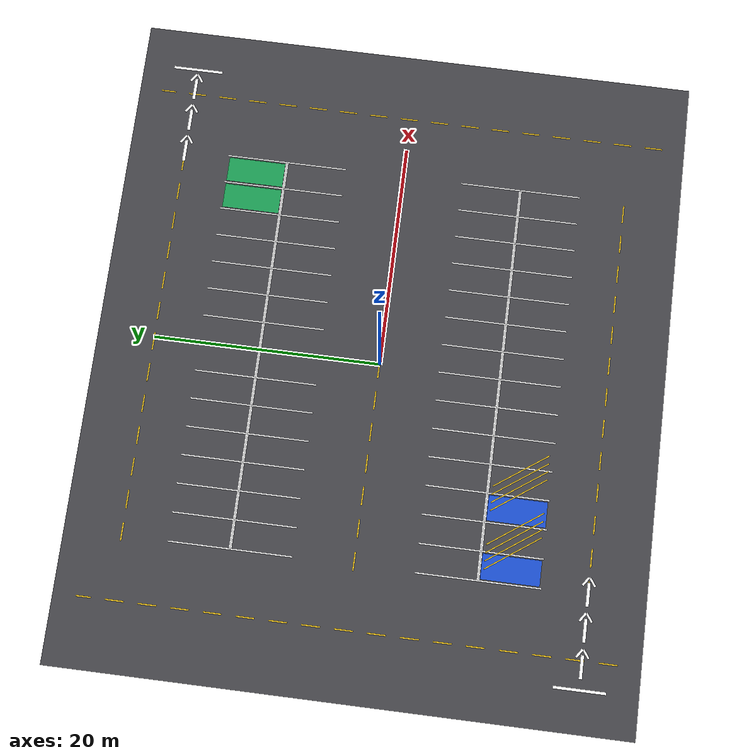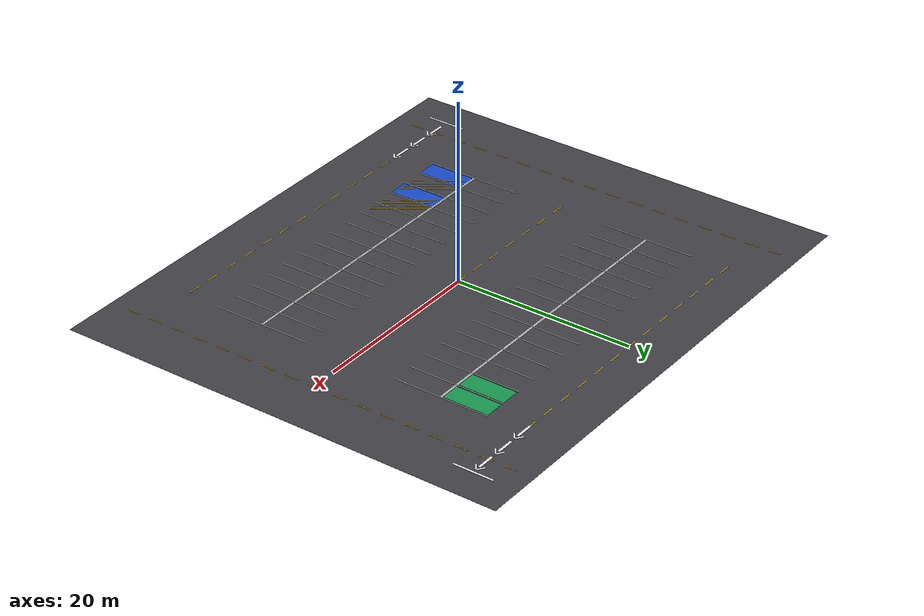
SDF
<sdf version="1.10">
 <world name="parking_lot">
  <model name="ground">
   <static>true</static>
   <link name="link">
    <collision name="c">
     <geometry><plane><normal>0 0 1</normal><size>78.0 70.1</size></plane></geometry>
     <surface><friction><ode><mu>1.0</mu><mu2>1.0</mu2></ode></friction></surface>
    </collision>
    <visual name="floor_vis">
     <pose>0.0000 0.0000 -0.0100 0 0 0.000000</pose>
     <geometry><box><size>58.0000 50.1000 0.0200</size></box></geometry>
     <material>
      <ambient>0.22 0.22 0.24 1</ambient>
      <diffuse>0.26 0.26 0.28 1</diffuse>
      <specular>0.1 0.1 0.1 1</specular>
     </material>
    </visual>
   </link>
  </model>
  <model name="road_markings">
   <static>true</static>
   <link name="link">
    <visual name="l_A_v00_vis">
     <pose>-17.5000 -13.3500 0.0240 0 0 0.000000</pose>
     <geometry><box><size>0.1200 5.4000 0.0060</size></box></geometry>
     <material>
      <ambient>0.85 0.85 0.85 1</ambient>
      <diffuse>0.95 0.95 0.95 1</diffuse>
      <specular>0.1 0.1 0.1 1</specular>
     </material>
    </visual>
    <visual name="l_A_v01_vis">
     <pose>-15.0000 -13.3500 0.0240 0 0 0.000000</pose>
     <geometry><box><size>0.1200 5.4000 0.0060</size></box></geometry>
     <material>
      <ambient>0.85 0.85 0.85 1</ambient>
      <diffuse>0.95 0.95 0.95 1</diffuse>
      <specular>0.1 0.1 0.1 1</specular>
     </material>
    </visual>
    <visual name="l_A_v02_vis">
     <pose>-12.5000 -13.3500 0.0240 0 0 0.000000</pose>
     <geometry><box><size>0.1200 5.4000 0.0060</size></box></geometry>
     <material>
      <ambient>0.85 0.85 0.85 1</ambient>
      <diffuse>0.95 0.95 0.95 1</diffuse>
      <specular>0.1 0.1 0.1 1</specular>
     </material>
    </visual>
    <visual name="l_A_v03_vis">
     <pose>-10.0000 -13.3500 0.0240 0 0 0.000000</pose>
     <geometry><box><size>0.1200 5.4000 0.0060</size></box></geometry>
     <material>
      <ambient>0.85 0.85 0.85 1</ambient>
      <diffuse>0.95 0.95 0.95 1</diffuse>
      <specular>0.1 0.1 0.1 1</specular>
     </material>
    </visual>
    <visual name="l_A_v04_vis">
     <pose>-7.5000 -13.3500 0.0240 0 0 0.000000</pose>
     <geometry><box><size>0.1200 5.4000 0.0060</size></box></geometry>
     <material>
      <ambient>0.85 0.85 0.85 1</ambient>
      <diffuse>0.95 0.95 0.95 1</diffuse>
      <specular>0.1 0.1 0.1 1</specular>
     </material>
    </visual>
    <visual name="l_A_v05_vis">
     <pose>-5.0000 -13.3500 0.0240 0 0 0.000000</pose>
     <geometry><box><size>0.1200 5.4000 0.0060</size></box></geometry>
     <material>
      <ambient>0.85 0.85 0.85 1</ambient>
      <diffuse>0.95 0.95 0.95 1</diffuse>
      <specular>0.1 0.1 0.1 1</specular>
     </material>
    </visual>
    <visual name="l_A_v06_vis">
     <pose>-2.5000 -13.3500 0.0240 0 0 0.000000</pose>
     <geometry><box><size>0.1200 5.4000 0.0060</size></box></geometry>
     <material>
      <ambient>0.85 0.85 0.85 1</ambient>
      <diffuse>0.95 0.95 0.95 1</diffuse>
      <specular>0.1 0.1 0.1 1</specular>
     </material>
    </visual>
    <visual name="l_A_v07_vis">
     <pose>0.0000 -13.3500 0.0240 0 0 0.000000</pose>
     <geometry><box><size>0.1200 5.4000 0.0060</size></box></geometry>
     <material>
      <ambient>0.85 0.85 0.85 1</ambient>
      <diffuse>0.95 0.95 0.95 1</diffuse>
      <specular>0.1 0.1 0.1 1</specular>
     </material>
    </visual>
    <visual name="l_A_v08_vis">
     <pose>2.5000 -13.3500 0.0240 0 0 0.000000</pose>
     <geometry><box><size>0.1200 5.4000 0.0060</size></box></geometry>
     <material>
      <ambient>0.85 0.85 0.85 1</ambient>
      <diffuse>0.95 0.95 0.95 1</diffuse>
      <specular>0.1 0.1 0.1 1</specular>
     </material>
    </visual>
    <visual name="l_A_v09_vis">
     <pose>5.0000 -13.3500 0.0240 0 0 0.000000</pose>
     <geometry><box><size>0.1200 5.4000 0.0060</size></box></geometry>
     <material>
      <ambient>0.85 0.85 0.85 1</ambient>
      <diffuse>0.95 0.95 0.95 1</diffuse>
      <specular>0.1 0.1 0.1 1</specular>
     </material>
    </visual>
    <visual name="l_A_v10_vis">
     <pose>7.5000 -13.3500 0.0240 0 0 0.000000</pose>
     <geometry><box><size>0.1200 5.4000 0.0060</size></box></geometry>
     <material>
      <ambient>0.85 0.85 0.85 1</ambient>
      <diffuse>0.95 0.95 0.95 1</diffuse>
      <specular>0.1 0.1 0.1 1</specular>
     </material>
    </visual>
    <visual name="l_A_v11_vis">
     <pose>10.0000 -13.3500 0.0240 0 0 0.000000</pose>
     <geometry><box><size>0.1200 5.4000 0.0060</size></box></geometry>
     <material>
      <ambient>0.85 0.85 0.85 1</ambient>
      <diffuse>0.95 0.95 0.95 1</diffuse>
      <specular>0.1 0.1 0.1 1</specular>
     </material>
    </visual>
    <visual name="l_A_v12_vis">
     <pose>12.5000 -13.3500 0.0240 0 0 0.000000</pose>
     <geometry><box><size>0.1200 5.4000 0.0060</size></box></geometry>
     <material>
      <ambient>0.85 0.85 0.85 1</ambient>
      <diffuse>0.95 0.95 0.95 1</diffuse>
      <specular>0.1 0.1 0.1 1</specular>
     </material>
    </visual>
    <visual name="l_A_v13_vis">
     <pose>15.0000 -13.3500 0.0240 0 0 0.000000</pose>
     <geometry><box><size>0.1200 5.4000 0.0060</size></box></geometry>
     <material>
      <ambient>0.85 0.85 0.85 1</ambient>
      <diffuse>0.95 0.95 0.95 1</diffuse>
      <specular>0.1 0.1 0.1 1</specular>
     </material>
    </visual>
    <visual name="l_A_v14_vis">
     <pose>17.5000 -13.3500 0.0240 0 0 0.000000</pose>
     <geometry><box><size>0.1200 5.4000 0.0060</size></box></geometry>
     <material>
      <ambient>0.85 0.85 0.85 1</ambient>
      <diffuse>0.95 0.95 0.95 1</diffuse>
      <specular>0.1 0.1 0.1 1</specular>
     </material>
    </visual>
    <visual name="l_A_back_vis">
     <pose>0.0000 -10.7100 0.0170 0 0 0.000000</pose>
     <geometry><box><size>35.0000 0.1200 0.0060</size></box></geometry>
     <material>
      <ambient>0.85 0.85 0.85 1</ambient>
      <diffuse>0.95 0.95 0.95 1</diffuse>
      <specular>0.1 0.1 0.1 1</specular>
     </material>
    </visual>
    <visual name="l_B_v00_vis">
     <pose>-17.5000 -7.9500 0.0240 0 0 0.000000</pose>
     <geometry><box><size>0.1200 5.4000 0.0060</size></box></geometry>
     <material>
      <ambient>0.85 0.85 0.85 1</ambient>
      <diffuse>0.95 0.95 0.95 1</diffuse>
      <specular>0.1 0.1 0.1 1</specular>
     </material>
    </visual>
    <visual name="l_B_v01_vis">
     <pose>-15.0000 -7.9500 0.0240 0 0 0.000000</pose>
     <geometry><box><size>0.1200 5.4000 0.0060</size></box></geometry>
     <material>
      <ambient>0.85 0.85 0.85 1</ambient>
      <diffuse>0.95 0.95 0.95 1</diffuse>
      <specular>0.1 0.1 0.1 1</specular>
     </material>
    </visual>
    <visual name="l_B_v02_vis">
     <pose>-12.5000 -7.9500 0.0240 0 0 0.000000</pose>
     <geometry><box><size>0.1200 5.4000 0.0060</size></box></geometry>
     <material>
      <ambient>0.85 0.85 0.85 1</ambient>
      <diffuse>0.95 0.95 0.95 1</diffuse>
      <specular>0.1 0.1 0.1 1</specular>
     </material>
    </visual>
    <visual name="l_B_v03_vis">
     <pose>-10.0000 -7.9500 0.0240 0 0 0.000000</pose>
     <geometry><box><size>0.1200 5.4000 0.0060</size></box></geometry>
     <material>
      <ambient>0.85 0.85 0.85 1</ambient>
      <diffuse>0.95 0.95 0.95 1</diffuse>
      <specular>0.1 0.1 0.1 1</specular>
     </material>
    </visual>
    <visual name="l_B_v04_vis">
     <pose>-7.5000 -7.9500 0.0240 0 0 0.000000</pose>
     <geometry><box><size>0.1200 5.4000 0.0060</size></box></geometry>
     <material>
      <ambient>0.85 0.85 0.85 1</ambient>
      <diffuse>0.95 0.95 0.95 1</diffuse>
      <specular>0.1 0.1 0.1 1</specular>
     </material>
    </visual>
    <visual name="l_B_v05_vis">
     <pose>-5.0000 -7.9500 0.0240 0 0 0.000000</pose>
     <geometry><box><size>0.1200 5.4000 0.0060</size></box></geometry>
     <material>
      <ambient>0.85 0.85 0.85 1</ambient>
      <diffuse>0.95 0.95 0.95 1</diffuse>
      <specular>0.1 0.1 0.1 1</specular>
     </material>
    </visual>
    <visual name="l_B_v06_vis">
     <pose>-2.5000 -7.9500 0.0240 0 0 0.000000</pose>
     <geometry><box><size>0.1200 5.4000 0.0060</size></box></geometry>
     <material>
      <ambient>0.85 0.85 0.85 1</ambient>
      <diffuse>0.95 0.95 0.95 1</diffuse>
      <specular>0.1 0.1 0.1 1</specular>
     </material>
    </visual>
    <visual name="l_B_v07_vis">
     <pose>0.0000 -7.9500 0.0240 0 0 0.000000</pose>
     <geometry><box><size>0.1200 5.4000 0.0060</size></box></geometry>
     <material>
      <ambient>0.85 0.85 0.85 1</ambient>
      <diffuse>0.95 0.95 0.95 1</diffuse>
      <specular>0.1 0.1 0.1 1</specular>
     </material>
    </visual>
    <visual name="l_B_v08_vis">
     <pose>2.5000 -7.9500 0.0240 0 0 0.000000</pose>
     <geometry><box><size>0.1200 5.4000 0.0060</size></box></geometry>
     <material>
      <ambient>0.85 0.85 0.85 1</ambient>
      <diffuse>0.95 0.95 0.95 1</diffuse>
      <specular>0.1 0.1 0.1 1</specular>
     </material>
    </visual>
    <visual name="l_B_v09_vis">
     <pose>5.0000 -7.9500 0.0240 0 0 0.000000</pose>
     <geometry><box><size>0.1200 5.4000 0.0060</size></box></geometry>
     <material>
      <ambient>0.85 0.85 0.85 1</ambient>
      <diffuse>0.95 0.95 0.95 1</diffuse>
      <specular>0.1 0.1 0.1 1</specular>
     </material>
    </visual>
    <visual name="l_B_v10_vis">
     <pose>7.5000 -7.9500 0.0240 0 0 0.000000</pose>
     <geometry><box><size>0.1200 5.4000 0.0060</size></box></geometry>
     <material>
      <ambient>0.85 0.85 0.85 1</ambient>
      <diffuse>0.95 0.95 0.95 1</diffuse>
      <specular>0.1 0.1 0.1 1</specular>
     </material>
    </visual>
    <visual name="l_B_v11_vis">
     <pose>10.0000 -7.9500 0.0240 0 0 0.000000</pose>
     <geometry><box><size>0.1200 5.4000 0.0060</size></box></geometry>
     <material>
      <ambient>0.85 0.85 0.85 1</ambient>
      <diffuse>0.95 0.95 0.95 1</diffuse>
      <specular>0.1 0.1 0.1 1</specular>
     </material>
    </visual>
    <visual name="l_B_v12_vis">
     <pose>12.5000 -7.9500 0.0240 0 0 0.000000</pose>
     <geometry><box><size>0.1200 5.4000 0.0060</size></box></geometry>
     <material>
      <ambient>0.85 0.85 0.85 1</ambient>
      <diffuse>0.95 0.95 0.95 1</diffuse>
      <specular>0.1 0.1 0.1 1</specular>
     </material>
    </visual>
    <visual name="l_B_v13_vis">
     <pose>15.0000 -7.9500 0.0240 0 0 0.000000</pose>
     <geometry><box><size>0.1200 5.4000 0.0060</size></box></geometry>
     <material>
      <ambient>0.85 0.85 0.85 1</ambient>
      <diffuse>0.95 0.95 0.95 1</diffuse>
      <specular>0.1 0.1 0.1 1</specular>
     </material>
    </visual>
    <visual name="l_B_v14_vis">
     <pose>17.5000 -7.9500 0.0240 0 0 0.000000</pose>
     <geometry><box><size>0.1200 5.4000 0.0060</size></box></geometry>
     <material>
      <ambient>0.85 0.85 0.85 1</ambient>
      <diffuse>0.95 0.95 0.95 1</diffuse>
      <specular>0.1 0.1 0.1 1</specular>
     </material>
    </visual>
    <visual name="l_B_back_vis">
     <pose>0.0000 -10.5900 0.0170 0 0 0.000000</pose>
     <geometry><box><size>35.0000 0.1200 0.0060</size></box></geometry>
     <material>
      <ambient>0.85 0.85 0.85 1</ambient>
      <diffuse>0.95 0.95 0.95 1</diffuse>
      <specular>0.1 0.1 0.1 1</specular>
     </material>
    </visual>
    <visual name="l_C_v00_vis">
     <pose>-17.5000 7.9500 0.0240 0 0 0.000000</pose>
     <geometry><box><size>0.1200 5.4000 0.0060</size></box></geometry>
     <material>
      <ambient>0.85 0.85 0.85 1</ambient>
      <diffuse>0.95 0.95 0.95 1</diffuse>
      <specular>0.1 0.1 0.1 1</specular>
     </material>
    </visual>
    <visual name="l_C_v01_vis">
     <pose>-15.0000 7.9500 0.0240 0 0 0.000000</pose>
     <geometry><box><size>0.1200 5.4000 0.0060</size></box></geometry>
     <material>
      <ambient>0.85 0.85 0.85 1</ambient>
      <diffuse>0.95 0.95 0.95 1</diffuse>
      <specular>0.1 0.1 0.1 1</specular>
     </material>
    </visual>
    <visual name="l_C_v02_vis">
     <pose>-12.5000 7.9500 0.0240 0 0 0.000000</pose>
     <geometry><box><size>0.1200 5.4000 0.0060</size></box></geometry>
     <material>
      <ambient>0.85 0.85 0.85 1</ambient>
      <diffuse>0.95 0.95 0.95 1</diffuse>
      <specular>0.1 0.1 0.1 1</specular>
     </material>
    </visual>
    <visual name="l_C_v03_vis">
     <pose>-10.0000 7.9500 0.0240 0 0 0.000000</pose>
     <geometry><box><size>0.1200 5.4000 0.0060</size></box></geometry>
     <material>
      <ambient>0.85 0.85 0.85 1</ambient>
      <diffuse>0.95 0.95 0.95 1</diffuse>
      <specular>0.1 0.1 0.1 1</specular>
     </material>
    </visual>
    <visual name="l_C_v04_vis">
     <pose>-7.5000 7.9500 0.0240 0 0 0.000000</pose>
     <geometry><box><size>0.1200 5.4000 0.0060</size></box></geometry>
     <material>
      <ambient>0.85 0.85 0.85 1</ambient>
      <diffuse>0.95 0.95 0.95 1</diffuse>
      <specular>0.1 0.1 0.1 1</specular>
     </material>
    </visual>
    <visual name="l_C_v05_vis">
     <pose>-5.0000 7.9500 0.0240 0 0 0.000000</pose>
     <geometry><box><size>0.1200 5.4000 0.0060</size></box></geometry>
     <material>
      <ambient>0.85 0.85 0.85 1</ambient>
      <diffuse>0.95 0.95 0.95 1</diffuse>
      <specular>0.1 0.1 0.1 1</specular>
     </material>
    </visual>
    <visual name="l_C_v06_vis">
     <pose>-2.5000 7.9500 0.0240 0 0 0.000000</pose>
     <geometry><box><size>0.1200 5.4000 0.0060</size></box></geometry>
     <material>
      <ambient>0.85 0.85 0.85 1</ambient>
      <diffuse>0.95 0.95 0.95 1</diffuse>
      <specular>0.1 0.1 0.1 1</specular>
     </material>
    </visual>
    <visual name="l_C_v07_vis">
     <pose>0.0000 7.9500 0.0240 0 0 0.000000</pose>
     <geometry><box><size>0.1200 5.4000 0.0060</size></box></geometry>
     <material>
      <ambient>0.85 0.85 0.85 1</ambient>
      <diffuse>0.95 0.95 0.95 1</diffuse>
      <specular>0.1 0.1 0.1 1</specular>
     </material>
    </visual>
    <visual name="l_C_v08_vis">
     <pose>2.5000 7.9500 0.0240 0 0 0.000000</pose>
     <geometry><box><size>0.1200 5.4000 0.0060</size></box></geometry>
     <material>
      <ambient>0.85 0.85 0.85 1</ambient>
      <diffuse>0.95 0.95 0.95 1</diffuse>
      <specular>0.1 0.1 0.1 1</specular>
     </material>
    </visual>
    <visual name="l_C_v09_vis">
     <pose>5.0000 7.9500 0.0240 0 0 0.000000</pose>
     <geometry><box><size>0.1200 5.4000 0.0060</size></box></geometry>
     <material>
      <ambient>0.85 0.85 0.85 1</ambient>
      <diffuse>0.95 0.95 0.95 1</diffuse>
      <specular>0.1 0.1 0.1 1</specular>
     </material>
    </visual>
    <visual name="l_C_v10_vis">
     <pose>7.5000 7.9500 0.0240 0 0 0.000000</pose>
     <geometry><box><size>0.1200 5.4000 0.0060</size></box></geometry>
     <material>
      <ambient>0.85 0.85 0.85 1</ambient>
      <diffuse>0.95 0.95 0.95 1</diffuse>
      <specular>0.1 0.1 0.1 1</specular>
     </material>
    </visual>
    <visual name="l_C_v11_vis">
     <pose>10.0000 7.9500 0.0240 0 0 0.000000</pose>
     <geometry><box><size>0.1200 5.4000 0.0060</size></box></geometry>
     <material>
      <ambient>0.85 0.85 0.85 1</ambient>
      <diffuse>0.95 0.95 0.95 1</diffuse>
      <specular>0.1 0.1 0.1 1</specular>
     </material>
    </visual>
    <visual name="l_C_v12_vis">
     <pose>12.5000 7.9500 0.0240 0 0 0.000000</pose>
     <geometry><box><size>0.1200 5.4000 0.0060</size></box></geometry>
     <material>
      <ambient>0.85 0.85 0.85 1</ambient>
      <diffuse>0.95 0.95 0.95 1</diffuse>
      <specular>0.1 0.1 0.1 1</specular>
     </material>
    </visual>
    <visual name="l_C_v13_vis">
     <pose>15.0000 7.9500 0.0240 0 0 0.000000</pose>
     <geometry><box><size>0.1200 5.4000 0.0060</size></box></geometry>
     <material>
      <ambient>0.85 0.85 0.85 1</ambient>
      <diffuse>0.95 0.95 0.95 1</diffuse>
      <specular>0.1 0.1 0.1 1</specular>
     </material>
    </visual>
    <visual name="l_C_v14_vis">
     <pose>17.5000 7.9500 0.0240 0 0 0.000000</pose>
     <geometry><box><size>0.1200 5.4000 0.0060</size></box></geometry>
     <material>
      <ambient>0.85 0.85 0.85 1</ambient>
      <diffuse>0.95 0.95 0.95 1</diffuse>
      <specular>0.1 0.1 0.1 1</specular>
     </material>
    </visual>
    <visual name="l_C_back_vis">
     <pose>0.0000 10.5900 0.0170 0 0 0.000000</pose>
     <geometry><box><size>35.0000 0.1200 0.0060</size></box></geometry>
     <material>
      <ambient>0.85 0.85 0.85 1</ambient>
      <diffuse>0.95 0.95 0.95 1</diffuse>
      <specular>0.1 0.1 0.1 1</specular>
     </material>
    </visual>
    <visual name="l_D_v00_vis">
     <pose>-17.5000 13.3500 0.0240 0 0 0.000000</pose>
     <geometry><box><size>0.1200 5.4000 0.0060</size></box></geometry>
     <material>
      <ambient>0.85 0.85 0.85 1</ambient>
      <diffuse>0.95 0.95 0.95 1</diffuse>
      <specular>0.1 0.1 0.1 1</specular>
     </material>
    </visual>
    <visual name="l_D_v01_vis">
     <pose>-15.0000 13.3500 0.0240 0 0 0.000000</pose>
     <geometry><box><size>0.1200 5.4000 0.0060</size></box></geometry>
     <material>
      <ambient>0.85 0.85 0.85 1</ambient>
      <diffuse>0.95 0.95 0.95 1</diffuse>
      <specular>0.1 0.1 0.1 1</specular>
     </material>
    </visual>
    <visual name="l_D_v02_vis">
     <pose>-12.5000 13.3500 0.0240 0 0 0.000000</pose>
     <geometry><box><size>0.1200 5.4000 0.0060</size></box></geometry>
     <material>
      <ambient>0.85 0.85 0.85 1</ambient>
      <diffuse>0.95 0.95 0.95 1</diffuse>
      <specular>0.1 0.1 0.1 1</specular>
     </material>
    </visual>
    <visual name="l_D_v03_vis">
     <pose>-10.0000 13.3500 0.0240 0 0 0.000000</pose>
     <geometry><box><size>0.1200 5.4000 0.0060</size></box></geometry>
     <material>
      <ambient>0.85 0.85 0.85 1</ambient>
      <diffuse>0.95 0.95 0.95 1</diffuse>
      <specular>0.1 0.1 0.1 1</specular>
     </material>
    </visual>
    <visual name="l_D_v04_vis">
     <pose>-7.5000 13.3500 0.0240 0 0 0.000000</pose>
     <geometry><box><size>0.1200 5.4000 0.0060</size></box></geometry>
     <material>
      <ambient>0.85 0.85 0.85 1</ambient>
      <diffuse>0.95 0.95 0.95 1</diffuse>
      <specular>0.1 0.1 0.1 1</specular>
     </material>
    </visual>
    <visual name="l_D_v05_vis">
     <pose>-5.0000 13.3500 0.0240 0 0 0.000000</pose>
     <geometry><box><size>0.1200 5.4000 0.0060</size></box></geometry>
     <material>
      <ambient>0.85 0.85 0.85 1</ambient>
      <diffuse>0.95 0.95 0.95 1</diffuse>
      <specular>0.1 0.1 0.1 1</specular>
     </material>
    </visual>
    <visual name="l_D_v06_vis">
     <pose>-2.5000 13.3500 0.0240 0 0 0.000000</pose>
     <geometry><box><size>0.1200 5.4000 0.0060</size></box></geometry>
     <material>
      <ambient>0.85 0.85 0.85 1</ambient>
      <diffuse>0.95 0.95 0.95 1</diffuse>
      <specular>0.1 0.1 0.1 1</specular>
     </material>
    </visual>
    <visual name="l_D_v07_vis">
     <pose>0.0000 13.3500 0.0240 0 0 0.000000</pose>
     <geometry><box><size>0.1200 5.4000 0.0060</size></box></geometry>
     <material>
      <ambient>0.85 0.85 0.85 1</ambient>
      <diffuse>0.95 0.95 0.95 1</diffuse>
      <specular>0.1 0.1 0.1 1</specular>
     </material>
    </visual>
    <visual name="l_D_v08_vis">
     <pose>2.5000 13.3500 0.0240 0 0 0.000000</pose>
     <geometry><box><size>0.1200 5.4000 0.0060</size></box></geometry>
     <material>
      <ambient>0.85 0.85 0.85 1</ambient>
      <diffuse>0.95 0.95 0.95 1</diffuse>
      <specular>0.1 0.1 0.1 1</specular>
     </material>
    </visual>
    <visual name="l_D_v09_vis">
     <pose>5.0000 13.3500 0.0240 0 0 0.000000</pose>
     <geometry><box><size>0.1200 5.4000 0.0060</size></box></geometry>
     <material>
      <ambient>0.85 0.85 0.85 1</ambient>
      <diffuse>0.95 0.95 0.95 1</diffuse>
      <specular>0.1 0.1 0.1 1</specular>
     </material>
    </visual>
    <visual name="l_D_v10_vis">
     <pose>7.5000 13.3500 0.0240 0 0 0.000000</pose>
     <geometry><box><size>0.1200 5.4000 0.0060</size></box></geometry>
     <material>
      <ambient>0.85 0.85 0.85 1</ambient>
      <diffuse>0.95 0.95 0.95 1</diffuse>
      <specular>0.1 0.1 0.1 1</specular>
     </material>
    </visual>
    <visual name="l_D_v11_vis">
     <pose>10.0000 13.3500 0.0240 0 0 0.000000</pose>
     <geometry><box><size>0.1200 5.4000 0.0060</size></box></geometry>
     <material>
      <ambient>0.85 0.85 0.85 1</ambient>
      <diffuse>0.95 0.95 0.95 1</diffuse>
      <specular>0.1 0.1 0.1 1</specular>
     </material>
    </visual>
    <visual name="l_D_v12_vis">
     <pose>12.5000 13.3500 0.0240 0 0 0.000000</pose>
     <geometry><box><size>0.1200 5.4000 0.0060</size></box></geometry>
     <material>
      <ambient>0.85 0.85 0.85 1</ambient>
      <diffuse>0.95 0.95 0.95 1</diffuse>
      <specular>0.1 0.1 0.1 1</specular>
     </material>
    </visual>
    <visual name="l_D_v13_vis">
     <pose>15.0000 13.3500 0.0240 0 0 0.000000</pose>
     <geometry><box><size>0.1200 5.4000 0.0060</size></box></geometry>
     <material>
      <ambient>0.85 0.85 0.85 1</ambient>
      <diffuse>0.95 0.95 0.95 1</diffuse>
      <specular>0.1 0.1 0.1 1</specular>
     </material>
    </visual>
    <visual name="l_D_v14_vis">
     <pose>17.5000 13.3500 0.0240 0 0 0.000000</pose>
     <geometry><box><size>0.1200 5.4000 0.0060</size></box></geometry>
     <material>
      <ambient>0.85 0.85 0.85 1</ambient>
      <diffuse>0.95 0.95 0.95 1</diffuse>
      <specular>0.1 0.1 0.1 1</specular>
     </material>
    </visual>
    <visual name="l_D_back_vis">
     <pose>0.0000 10.7100 0.0170 0 0 0.000000</pose>
     <geometry><box><size>35.0000 0.1200 0.0060</size></box></geometry>
     <material>
      <ambient>0.85 0.85 0.85 1</ambient>
      <diffuse>0.95 0.95 0.95 1</diffuse>
      <specular>0.1 0.1 0.1 1</specular>
     </material>
    </visual>
    <visual name="pf_A01_vis">
     <pose>-16.2500 -13.3500 0.0100 0 0 0.000000</pose>
     <geometry><box><size>2.2000 5.1000 0.0060</size></box></geometry>
     <material>
      <ambient>0.06 0.18 0.55 1</ambient>
      <diffuse>0.10 0.30 0.80 1</diffuse>
      <specular>0.1 0.1 0.1 1</specular>
     </material>
    </visual>
    <visual name="hz_A02_00_vis">
     <pose>-14.8500 -13.3500 0.0310 0 0 0.610865</pose>
     <geometry><box><size>0.1000 5.6700 0.0060</size></box></geometry>
     <material>
      <ambient>0.72 0.58 0.06 1</ambient>
      <diffuse>0.90 0.74 0.10 1</diffuse>
      <specular>0.1 0.1 0.1 1</specular>
     </material>
    </visual>
    <visual name="hz_A02_01_vis">
     <pose>-14.1500 -13.3500 0.0310 0 0 0.610865</pose>
     <geometry><box><size>0.1000 5.6700 0.0060</size></box></geometry>
     <material>
      <ambient>0.72 0.58 0.06 1</ambient>
      <diffuse>0.90 0.74 0.10 1</diffuse>
      <specular>0.1 0.1 0.1 1</specular>
     </material>
    </visual>
    <visual name="hz_A02_02_vis">
     <pose>-13.4500 -13.3500 0.0310 0 0 0.610865</pose>
     <geometry><box><size>0.1000 5.6700 0.0060</size></box></geometry>
     <material>
      <ambient>0.72 0.58 0.06 1</ambient>
      <diffuse>0.90 0.74 0.10 1</diffuse>
      <specular>0.1 0.1 0.1 1</specular>
     </material>
    </visual>
    <visual name="hz_A02_03_vis">
     <pose>-12.7500 -13.3500 0.0310 0 0 0.610865</pose>
     <geometry><box><size>0.1000 5.6700 0.0060</size></box></geometry>
     <material>
      <ambient>0.72 0.58 0.06 1</ambient>
      <diffuse>0.90 0.74 0.10 1</diffuse>
      <specular>0.1 0.1 0.1 1</specular>
     </material>
    </visual>
    <visual name="pf_A03_vis">
     <pose>-11.2500 -13.3500 0.0100 0 0 0.000000</pose>
     <geometry><box><size>2.2000 5.1000 0.0060</size></box></geometry>
     <material>
      <ambient>0.06 0.18 0.55 1</ambient>
      <diffuse>0.10 0.30 0.80 1</diffuse>
      <specular>0.1 0.1 0.1 1</specular>
     </material>
    </visual>
    <visual name="hz_A04_00_vis">
     <pose>-9.8500 -13.3500 0.0310 0 0 0.610865</pose>
     <geometry><box><size>0.1000 5.6700 0.0060</size></box></geometry>
     <material>
      <ambient>0.72 0.58 0.06 1</ambient>
      <diffuse>0.90 0.74 0.10 1</diffuse>
      <specular>0.1 0.1 0.1 1</specular>
     </material>
    </visual>
    <visual name="hz_A04_01_vis">
     <pose>-9.1500 -13.3500 0.0310 0 0 0.610865</pose>
     <geometry><box><size>0.1000 5.6700 0.0060</size></box></geometry>
     <material>
      <ambient>0.72 0.58 0.06 1</ambient>
      <diffuse>0.90 0.74 0.10 1</diffuse>
      <specular>0.1 0.1 0.1 1</specular>
     </material>
    </visual>
    <visual name="hz_A04_02_vis">
     <pose>-8.4500 -13.3500 0.0310 0 0 0.610865</pose>
     <geometry><box><size>0.1000 5.6700 0.0060</size></box></geometry>
     <material>
      <ambient>0.72 0.58 0.06 1</ambient>
      <diffuse>0.90 0.74 0.10 1</diffuse>
      <specular>0.1 0.1 0.1 1</specular>
     </material>
    </visual>
    <visual name="hz_A04_03_vis">
     <pose>-7.7500 -13.3500 0.0310 0 0 0.610865</pose>
     <geometry><box><size>0.1000 5.6700 0.0060</size></box></geometry>
     <material>
      <ambient>0.72 0.58 0.06 1</ambient>
      <diffuse>0.90 0.74 0.10 1</diffuse>
      <specular>0.1 0.1 0.1 1</specular>
     </material>
    </visual>
    <visual name="pf_D13_vis">
     <pose>13.7500 13.3500 0.0100 0 0 0.000000</pose>
     <geometry><box><size>2.2000 5.1000 0.0060</size></box></geometry>
     <material>
      <ambient>0.05 0.35 0.18 1</ambient>
      <diffuse>0.10 0.60 0.32 1</diffuse>
      <specular>0.1 0.1 0.1 1</specular>
     </material>
    </visual>
    <visual name="pf_D14_vis">
     <pose>16.2500 13.3500 0.0100 0 0 0.000000</pose>
     <geometry><box><size>2.2000 5.1000 0.0060</size></box></geometry>
     <material>
      <ambient>0.05 0.35 0.18 1</ambient>
      <diffuse>0.10 0.60 0.32 1</diffuse>
      <specular>0.1 0.1 0.1 1</specular>
     </material>
    </visual>
    <visual name="dash_S_000_vis">
     <pose>-17.2000 -20.0500 0.0170 0 0 0.000000</pose>
     <geometry><box><size>1.6000 0.1200 0.0060</size></box></geometry>
     <material>
      <ambient>0.72 0.58 0.06 1</ambient>
      <diffuse>0.90 0.74 0.10 1</diffuse>
      <specular>0.1 0.1 0.1 1</specular>
     </material>
    </visual>
    <visual name="dash_S_001_vis">
     <pose>-14.4000 -20.0500 0.0170 0 0 0.000000</pose>
     <geometry><box><size>1.6000 0.1200 0.0060</size></box></geometry>
     <material>
      <ambient>0.72 0.58 0.06 1</ambient>
      <diffuse>0.90 0.74 0.10 1</diffuse>
      <specular>0.1 0.1 0.1 1</specular>
     </material>
    </visual>
    <visual name="dash_S_002_vis">
     <pose>-11.6000 -20.0500 0.0170 0 0 0.000000</pose>
     <geometry><box><size>1.6000 0.1200 0.0060</size></box></geometry>
     <material>
      <ambient>0.72 0.58 0.06 1</ambient>
      <diffuse>0.90 0.74 0.10 1</diffuse>
      <specular>0.1 0.1 0.1 1</specular>
     </material>
    </visual>
    <visual name="dash_S_003_vis">
     <pose>-8.8000 -20.0500 0.0170 0 0 0.000000</pose>
     <geometry><box><size>1.6000 0.1200 0.0060</size></box></geometry>
     <material>
      <ambient>0.72 0.58 0.06 1</ambient>
      <diffuse>0.90 0.74 0.10 1</diffuse>
      <specular>0.1 0.1 0.1 1</specular>
     </material>
    </visual>
    <visual name="dash_S_004_vis">
     <pose>-6.0000 -20.0500 0.0170 0 0 0.000000</pose>
     <geometry><box><size>1.6000 0.1200 0.0060</size></box></geometry>
     <material>
      <ambient>0.72 0.58 0.06 1</ambient>
      <diffuse>0.90 0.74 0.10 1</diffuse>
      <specular>0.1 0.1 0.1 1</specular>
     </material>
    </visual>
    <visual name="dash_S_005_vis">
     <pose>-3.2000 -20.0500 0.0170 0 0 0.000000</pose>
     <geometry><box><size>1.6000 0.1200 0.0060</size></box></geometry>
     <material>
      <ambient>0.72 0.58 0.06 1</ambient>
      <diffuse>0.90 0.74 0.10 1</diffuse>
      <specular>0.1 0.1 0.1 1</specular>
     </material>
    </visual>
    <visual name="dash_S_006_vis">
     <pose>-0.4000 -20.0500 0.0170 0 0 0.000000</pose>
     <geometry><box><size>1.6000 0.1200 0.0060</size></box></geometry>
     <material>
      <ambient>0.72 0.58 0.06 1</ambient>
      <diffuse>0.90 0.74 0.10 1</diffuse>
      <specular>0.1 0.1 0.1 1</specular>
     </material>
    </visual>
    <visual name="dash_S_007_vis">
     <pose>2.4000 -20.0500 0.0170 0 0 0.000000</pose>
     <geometry><box><size>1.6000 0.1200 0.0060</size></box></geometry>
     <material>
      <ambient>0.72 0.58 0.06 1</ambient>
      <diffuse>0.90 0.74 0.10 1</diffuse>
      <specular>0.1 0.1 0.1 1</specular>
     </material>
    </visual>
    <visual name="dash_S_008_vis">
     <pose>5.2000 -20.0500 0.0170 0 0 0.000000</pose>
     <geometry><box><size>1.6000 0.1200 0.0060</size></box></geometry>
     <material>
      <ambient>0.72 0.58 0.06 1</ambient>
      <diffuse>0.90 0.74 0.10 1</diffuse>
      <specular>0.1 0.1 0.1 1</specular>
     </material>
    </visual>
    <visual name="dash_S_009_vis">
     <pose>8.0000 -20.0500 0.0170 0 0 0.000000</pose>
     <geometry><box><size>1.6000 0.1200 0.0060</size></box></geometry>
     <material>
      <ambient>0.72 0.58 0.06 1</ambient>
      <diffuse>0.90 0.74 0.10 1</diffuse>
      <specular>0.1 0.1 0.1 1</specular>
     </material>
    </visual>
    <visual name="dash_S_010_vis">
     <pose>10.8000 -20.0500 0.0170 0 0 0.000000</pose>
     <geometry><box><size>1.6000 0.1200 0.0060</size></box></geometry>
     <material>
      <ambient>0.72 0.58 0.06 1</ambient>
      <diffuse>0.90 0.74 0.10 1</diffuse>
      <specular>0.1 0.1 0.1 1</specular>
     </material>
    </visual>
    <visual name="dash_S_011_vis">
     <pose>13.6000 -20.0500 0.0170 0 0 0.000000</pose>
     <geometry><box><size>1.6000 0.1200 0.0060</size></box></geometry>
     <material>
      <ambient>0.72 0.58 0.06 1</ambient>
      <diffuse>0.90 0.74 0.10 1</diffuse>
      <specular>0.1 0.1 0.1 1</specular>
     </material>
    </visual>
    <visual name="dash_S_012_vis">
     <pose>16.4000 -20.0500 0.0170 0 0 0.000000</pose>
     <geometry><box><size>1.6000 0.1200 0.0060</size></box></geometry>
     <material>
      <ambient>0.72 0.58 0.06 1</ambient>
      <diffuse>0.90 0.74 0.10 1</diffuse>
      <specular>0.1 0.1 0.1 1</specular>
     </material>
    </visual>
    <visual name="dash_C_000_vis">
     <pose>-17.2000 0.0000 0.0170 0 0 0.000000</pose>
     <geometry><box><size>1.6000 0.1200 0.0060</size></box></geometry>
     <material>
      <ambient>0.72 0.58 0.06 1</ambient>
      <diffuse>0.90 0.74 0.10 1</diffuse>
      <specular>0.1 0.1 0.1 1</specular>
     </material>
    </visual>
    <visual name="dash_C_001_vis">
     <pose>-14.4000 0.0000 0.0170 0 0 0.000000</pose>
     <geometry><box><size>1.6000 0.1200 0.0060</size></box></geometry>
     <material>
      <ambient>0.72 0.58 0.06 1</ambient>
      <diffuse>0.90 0.74 0.10 1</diffuse>
      <specular>0.1 0.1 0.1 1</specular>
     </material>
    </visual>
    <visual name="dash_C_002_vis">
     <pose>-11.6000 0.0000 0.0170 0 0 0.000000</pose>
     <geometry><box><size>1.6000 0.1200 0.0060</size></box></geometry>
     <material>
      <ambient>0.72 0.58 0.06 1</ambient>
      <diffuse>0.90 0.74 0.10 1</diffuse>
      <specular>0.1 0.1 0.1 1</specular>
     </material>
    </visual>
    <visual name="dash_C_003_vis">
     <pose>-8.8000 0.0000 0.0170 0 0 0.000000</pose>
     <geometry><box><size>1.6000 0.1200 0.0060</size></box></geometry>
     <material>
      <ambient>0.72 0.58 0.06 1</ambient>
      <diffuse>0.90 0.74 0.10 1</diffuse>
      <specular>0.1 0.1 0.1 1</specular>
     </material>
    </visual>
    <visual name="dash_C_004_vis">
     <pose>-6.0000 0.0000 0.0170 0 0 0.000000</pose>
     <geometry><box><size>1.6000 0.1200 0.0060</size></box></geometry>
     <material>
      <ambient>0.72 0.58 0.06 1</ambient>
      <diffuse>0.90 0.74 0.10 1</diffuse>
      <specular>0.1 0.1 0.1 1</specular>
     </material>
    </visual>
    <visual name="dash_C_005_vis">
     <pose>-3.2000 0.0000 0.0170 0 0 0.000000</pose>
     <geometry><box><size>1.6000 0.1200 0.0060</size></box></geometry>
     <material>
      <ambient>0.72 0.58 0.06 1</ambient>
      <diffuse>0.90 0.74 0.10 1</diffuse>
      <specular>0.1 0.1 0.1 1</specular>
     </material>
    </visual>
    <visual name="dash_C_006_vis">
     <pose>-0.4000 0.0000 0.0170 0 0 0.000000</pose>
     <geometry><box><size>1.6000 0.1200 0.0060</size></box></geometry>
     <material>
      <ambient>0.72 0.58 0.06 1</ambient>
      <diffuse>0.90 0.74 0.10 1</diffuse>
      <specular>0.1 0.1 0.1 1</specular>
     </material>
    </visual>
    <visual name="dash_C_007_vis">
     <pose>2.4000 0.0000 0.0170 0 0 0.000000</pose>
     <geometry><box><size>1.6000 0.1200 0.0060</size></box></geometry>
     <material>
      <ambient>0.72 0.58 0.06 1</ambient>
      <diffuse>0.90 0.74 0.10 1</diffuse>
      <specular>0.1 0.1 0.1 1</specular>
     </material>
    </visual>
    <visual name="dash_C_008_vis">
     <pose>5.2000 0.0000 0.0170 0 0 0.000000</pose>
     <geometry><box><size>1.6000 0.1200 0.0060</size></box></geometry>
     <material>
      <ambient>0.72 0.58 0.06 1</ambient>
      <diffuse>0.90 0.74 0.10 1</diffuse>
      <specular>0.1 0.1 0.1 1</specular>
     </material>
    </visual>
    <visual name="dash_C_009_vis">
     <pose>8.0000 0.0000 0.0170 0 0 0.000000</pose>
     <geometry><box><size>1.6000 0.1200 0.0060</size></box></geometry>
     <material>
      <ambient>0.72 0.58 0.06 1</ambient>
      <diffuse>0.90 0.74 0.10 1</diffuse>
      <specular>0.1 0.1 0.1 1</specular>
     </material>
    </visual>
    <visual name="dash_C_010_vis">
     <pose>10.8000 0.0000 0.0170 0 0 0.000000</pose>
     <geometry><box><size>1.6000 0.1200 0.0060</size></box></geometry>
     <material>
      <ambient>0.72 0.58 0.06 1</ambient>
      <diffuse>0.90 0.74 0.10 1</diffuse>
      <specular>0.1 0.1 0.1 1</specular>
     </material>
    </visual>
    <visual name="dash_C_011_vis">
     <pose>13.6000 0.0000 0.0170 0 0 0.000000</pose>
     <geometry><box><size>1.6000 0.1200 0.0060</size></box></geometry>
     <material>
      <ambient>0.72 0.58 0.06 1</ambient>
      <diffuse>0.90 0.74 0.10 1</diffuse>
      <specular>0.1 0.1 0.1 1</specular>
     </material>
    </visual>
    <visual name="dash_C_012_vis">
     <pose>16.4000 0.0000 0.0170 0 0 0.000000</pose>
     <geometry><box><size>1.6000 0.1200 0.0060</size></box></geometry>
     <material>
      <ambient>0.72 0.58 0.06 1</ambient>
      <diffuse>0.90 0.74 0.10 1</diffuse>
      <specular>0.1 0.1 0.1 1</specular>
     </material>
    </visual>
    <visual name="dash_N_000_vis">
     <pose>-17.2000 20.0500 0.0170 0 0 0.000000</pose>
     <geometry><box><size>1.6000 0.1200 0.0060</size></box></geometry>
     <material>
      <ambient>0.72 0.58 0.06 1</ambient>
      <diffuse>0.90 0.74 0.10 1</diffuse>
      <specular>0.1 0.1 0.1 1</specular>
     </material>
    </visual>
    <visual name="dash_N_001_vis">
     <pose>-14.4000 20.0500 0.0170 0 0 0.000000</pose>
     <geometry><box><size>1.6000 0.1200 0.0060</size></box></geometry>
     <material>
      <ambient>0.72 0.58 0.06 1</ambient>
      <diffuse>0.90 0.74 0.10 1</diffuse>
      <specular>0.1 0.1 0.1 1</specular>
     </material>
    </visual>
    <visual name="dash_N_002_vis">
     <pose>-11.6000 20.0500 0.0170 0 0 0.000000</pose>
     <geometry><box><size>1.6000 0.1200 0.0060</size></box></geometry>
     <material>
      <ambient>0.72 0.58 0.06 1</ambient>
      <diffuse>0.90 0.74 0.10 1</diffuse>
      <specular>0.1 0.1 0.1 1</specular>
     </material>
    </visual>
    <visual name="dash_N_003_vis">
     <pose>-8.8000 20.0500 0.0170 0 0 0.000000</pose>
     <geometry><box><size>1.6000 0.1200 0.0060</size></box></geometry>
     <material>
      <ambient>0.72 0.58 0.06 1</ambient>
      <diffuse>0.90 0.74 0.10 1</diffuse>
      <specular>0.1 0.1 0.1 1</specular>
     </material>
    </visual>
    <visual name="dash_N_004_vis">
     <pose>-6.0000 20.0500 0.0170 0 0 0.000000</pose>
     <geometry><box><size>1.6000 0.1200 0.0060</size></box></geometry>
     <material>
      <ambient>0.72 0.58 0.06 1</ambient>
      <diffuse>0.90 0.74 0.10 1</diffuse>
      <specular>0.1 0.1 0.1 1</specular>
     </material>
    </visual>
    <visual name="dash_N_005_vis">
     <pose>-3.2000 20.0500 0.0170 0 0 0.000000</pose>
     <geometry><box><size>1.6000 0.1200 0.0060</size></box></geometry>
     <material>
      <ambient>0.72 0.58 0.06 1</ambient>
      <diffuse>0.90 0.74 0.10 1</diffuse>
      <specular>0.1 0.1 0.1 1</specular>
     </material>
    </visual>
    <visual name="dash_N_006_vis">
     <pose>-0.4000 20.0500 0.0170 0 0 0.000000</pose>
     <geometry><box><size>1.6000 0.1200 0.0060</size></box></geometry>
     <material>
      <ambient>0.72 0.58 0.06 1</ambient>
      <diffuse>0.90 0.74 0.10 1</diffuse>
      <specular>0.1 0.1 0.1 1</specular>
     </material>
    </visual>
    <visual name="dash_N_007_vis">
     <pose>2.4000 20.0500 0.0170 0 0 0.000000</pose>
     <geometry><box><size>1.6000 0.1200 0.0060</size></box></geometry>
     <material>
      <ambient>0.72 0.58 0.06 1</ambient>
      <diffuse>0.90 0.74 0.10 1</diffuse>
      <specular>0.1 0.1 0.1 1</specular>
     </material>
    </visual>
    <visual name="dash_N_008_vis">
     <pose>5.2000 20.0500 0.0170 0 0 0.000000</pose>
     <geometry><box><size>1.6000 0.1200 0.0060</size></box></geometry>
     <material>
      <ambient>0.72 0.58 0.06 1</ambient>
      <diffuse>0.90 0.74 0.10 1</diffuse>
      <specular>0.1 0.1 0.1 1</specular>
     </material>
    </visual>
    <visual name="dash_N_009_vis">
     <pose>8.0000 20.0500 0.0170 0 0 0.000000</pose>
     <geometry><box><size>1.6000 0.1200 0.0060</size></box></geometry>
     <material>
      <ambient>0.72 0.58 0.06 1</ambient>
      <diffuse>0.90 0.74 0.10 1</diffuse>
      <specular>0.1 0.1 0.1 1</specular>
     </material>
    </visual>
    <visual name="dash_N_010_vis">
     <pose>10.8000 20.0500 0.0170 0 0 0.000000</pose>
     <geometry><box><size>1.6000 0.1200 0.0060</size></box></geometry>
     <material>
      <ambient>0.72 0.58 0.06 1</ambient>
      <diffuse>0.90 0.74 0.10 1</diffuse>
      <specular>0.1 0.1 0.1 1</specular>
     </material>
    </visual>
    <visual name="dash_N_011_vis">
     <pose>13.6000 20.0500 0.0170 0 0 0.000000</pose>
     <geometry><box><size>1.6000 0.1200 0.0060</size></box></geometry>
     <material>
      <ambient>0.72 0.58 0.06 1</ambient>
      <diffuse>0.90 0.74 0.10 1</diffuse>
      <specular>0.1 0.1 0.1 1</specular>
     </material>
    </visual>
    <visual name="dash_N_012_vis">
     <pose>16.4000 20.0500 0.0170 0 0 0.000000</pose>
     <geometry><box><size>1.6000 0.1200 0.0060</size></box></geometry>
     <material>
      <ambient>0.72 0.58 0.06 1</ambient>
      <diffuse>0.90 0.74 0.10 1</diffuse>
      <specular>0.1 0.1 0.1 1</specular>
     </material>
    </visual>
    <visual name="dashv_W_000_vis">
     <pose>-23.0000 -22.2500 0.0170 0 0 0.000000</pose>
     <geometry><box><size>0.1200 1.6000 0.0060</size></box></geometry>
     <material>
      <ambient>0.72 0.58 0.06 1</ambient>
      <diffuse>0.90 0.74 0.10 1</diffuse>
      <specular>0.1 0.1 0.1 1</specular>
     </material>
    </visual>
    <visual name="dashv_W_001_vis">
     <pose>-23.0000 -19.4500 0.0170 0 0 0.000000</pose>
     <geometry><box><size>0.1200 1.6000 0.0060</size></box></geometry>
     <material>
      <ambient>0.72 0.58 0.06 1</ambient>
      <diffuse>0.90 0.74 0.10 1</diffuse>
      <specular>0.1 0.1 0.1 1</specular>
     </material>
    </visual>
    <visual name="dashv_W_002_vis">
     <pose>-23.0000 -16.6500 0.0170 0 0 0.000000</pose>
     <geometry><box><size>0.1200 1.6000 0.0060</size></box></geometry>
     <material>
      <ambient>0.72 0.58 0.06 1</ambient>
      <diffuse>0.90 0.74 0.10 1</diffuse>
      <specular>0.1 0.1 0.1 1</specular>
     </material>
    </visual>
    <visual name="dashv_W_003_vis">
     <pose>-23.0000 -13.8500 0.0170 0 0 0.000000</pose>
     <geometry><box><size>0.1200 1.6000 0.0060</size></box></geometry>
     <material>
      <ambient>0.72 0.58 0.06 1</ambient>
      <diffuse>0.90 0.74 0.10 1</diffuse>
      <specular>0.1 0.1 0.1 1</specular>
     </material>
    </visual>
    <visual name="dashv_W_004_vis">
     <pose>-23.0000 -11.0500 0.0170 0 0 0.000000</pose>
     <geometry><box><size>0.1200 1.6000 0.0060</size></box></geometry>
     <material>
      <ambient>0.72 0.58 0.06 1</ambient>
      <diffuse>0.90 0.74 0.10 1</diffuse>
      <specular>0.1 0.1 0.1 1</specular>
     </material>
    </visual>
    <visual name="dashv_W_005_vis">
     <pose>-23.0000 -8.2500 0.0170 0 0 0.000000</pose>
     <geometry><box><size>0.1200 1.6000 0.0060</size></box></geometry>
     <material>
      <ambient>0.72 0.58 0.06 1</ambient>
      <diffuse>0.90 0.74 0.10 1</diffuse>
      <specular>0.1 0.1 0.1 1</specular>
     </material>
    </visual>
    <visual name="dashv_W_006_vis">
     <pose>-23.0000 -5.4500 0.0170 0 0 0.000000</pose>
     <geometry><box><size>0.1200 1.6000 0.0060</size></box></geometry>
     <material>
      <ambient>0.72 0.58 0.06 1</ambient>
      <diffuse>0.90 0.74 0.10 1</diffuse>
      <specular>0.1 0.1 0.1 1</specular>
     </material>
    </visual>
    <visual name="dashv_W_007_vis">
     <pose>-23.0000 -2.6500 0.0170 0 0 0.000000</pose>
     <geometry><box><size>0.1200 1.6000 0.0060</size></box></geometry>
     <material>
      <ambient>0.72 0.58 0.06 1</ambient>
      <diffuse>0.90 0.74 0.10 1</diffuse>
      <specular>0.1 0.1 0.1 1</specular>
     </material>
    </visual>
    <visual name="dashv_W_008_vis">
     <pose>-23.0000 0.1500 0.0170 0 0 0.000000</pose>
     <geometry><box><size>0.1200 1.6000 0.0060</size></box></geometry>
     <material>
      <ambient>0.72 0.58 0.06 1</ambient>
      <diffuse>0.90 0.74 0.10 1</diffuse>
      <specular>0.1 0.1 0.1 1</specular>
     </material>
    </visual>
    <visual name="dashv_W_009_vis">
     <pose>-23.0000 2.9500 0.0170 0 0 0.000000</pose>
     <geometry><box><size>0.1200 1.6000 0.0060</size></box></geometry>
     <material>
      <ambient>0.72 0.58 0.06 1</ambient>
      <diffuse>0.90 0.74 0.10 1</diffuse>
      <specular>0.1 0.1 0.1 1</specular>
     </material>
    </visual>
    <visual name="dashv_W_010_vis">
     <pose>-23.0000 5.7500 0.0170 0 0 0.000000</pose>
     <geometry><box><size>0.1200 1.6000 0.0060</size></box></geometry>
     <material>
      <ambient>0.72 0.58 0.06 1</ambient>
      <diffuse>0.90 0.74 0.10 1</diffuse>
      <specular>0.1 0.1 0.1 1</specular>
     </material>
    </visual>
    <visual name="dashv_W_011_vis">
     <pose>-23.0000 8.5500 0.0170 0 0 0.000000</pose>
     <geometry><box><size>0.1200 1.6000 0.0060</size></box></geometry>
     <material>
      <ambient>0.72 0.58 0.06 1</ambient>
      <diffuse>0.90 0.74 0.10 1</diffuse>
      <specular>0.1 0.1 0.1 1</specular>
     </material>
    </visual>
    <visual name="dashv_W_012_vis">
     <pose>-23.0000 11.3500 0.0170 0 0 0.000000</pose>
     <geometry><box><size>0.1200 1.6000 0.0060</size></box></geometry>
     <material>
      <ambient>0.72 0.58 0.06 1</ambient>
      <diffuse>0.90 0.74 0.10 1</diffuse>
      <specular>0.1 0.1 0.1 1</specular>
     </material>
    </visual>
    <visual name="dashv_W_013_vis">
     <pose>-23.0000 14.1500 0.0170 0 0 0.000000</pose>
     <geometry><box><size>0.1200 1.6000 0.0060</size></box></geometry>
     <material>
      <ambient>0.72 0.58 0.06 1</ambient>
      <diffuse>0.90 0.74 0.10 1</diffuse>
      <specular>0.1 0.1 0.1 1</specular>
     </material>
    </visual>
    <visual name="dashv_W_014_vis">
     <pose>-23.0000 16.9500 0.0170 0 0 0.000000</pose>
     <geometry><box><size>0.1200 1.6000 0.0060</size></box></geometry>
     <material>
      <ambient>0.72 0.58 0.06 1</ambient>
      <diffuse>0.90 0.74 0.10 1</diffuse>
      <specular>0.1 0.1 0.1 1</specular>
     </material>
    </visual>
    <visual name="dashv_W_015_vis">
     <pose>-23.0000 19.7500 0.0170 0 0 0.000000</pose>
     <geometry><box><size>0.1200 1.6000 0.0060</size></box></geometry>
     <material>
      <ambient>0.72 0.58 0.06 1</ambient>
      <diffuse>0.90 0.74 0.10 1</diffuse>
      <specular>0.1 0.1 0.1 1</specular>
     </material>
    </visual>
    <visual name="dashv_W_016_vis">
     <pose>-23.0000 22.4000 0.0170 0 0 0.000000</pose>
     <geometry><box><size>0.1200 1.3000 0.0060</size></box></geometry>
     <material>
      <ambient>0.72 0.58 0.06 1</ambient>
      <diffuse>0.90 0.74 0.10 1</diffuse>
      <specular>0.1 0.1 0.1 1</specular>
     </material>
    </visual>
    <visual name="dashv_E_000_vis">
     <pose>23.0000 -22.2500 0.0170 0 0 0.000000</pose>
     <geometry><box><size>0.1200 1.6000 0.0060</size></box></geometry>
     <material>
      <ambient>0.72 0.58 0.06 1</ambient>
      <diffuse>0.90 0.74 0.10 1</diffuse>
      <specular>0.1 0.1 0.1 1</specular>
     </material>
    </visual>
    <visual name="dashv_E_001_vis">
     <pose>23.0000 -19.4500 0.0170 0 0 0.000000</pose>
     <geometry><box><size>0.1200 1.6000 0.0060</size></box></geometry>
     <material>
      <ambient>0.72 0.58 0.06 1</ambient>
      <diffuse>0.90 0.74 0.10 1</diffuse>
      <specular>0.1 0.1 0.1 1</specular>
     </material>
    </visual>
    <visual name="dashv_E_002_vis">
     <pose>23.0000 -16.6500 0.0170 0 0 0.000000</pose>
     <geometry><box><size>0.1200 1.6000 0.0060</size></box></geometry>
     <material>
      <ambient>0.72 0.58 0.06 1</ambient>
      <diffuse>0.90 0.74 0.10 1</diffuse>
      <specular>0.1 0.1 0.1 1</specular>
     </material>
    </visual>
    <visual name="dashv_E_003_vis">
     <pose>23.0000 -13.8500 0.0170 0 0 0.000000</pose>
     <geometry><box><size>0.1200 1.6000 0.0060</size></box></geometry>
     <material>
      <ambient>0.72 0.58 0.06 1</ambient>
      <diffuse>0.90 0.74 0.10 1</diffuse>
      <specular>0.1 0.1 0.1 1</specular>
     </material>
    </visual>
    <visual name="dashv_E_004_vis">
     <pose>23.0000 -11.0500 0.0170 0 0 0.000000</pose>
     <geometry><box><size>0.1200 1.6000 0.0060</size></box></geometry>
     <material>
      <ambient>0.72 0.58 0.06 1</ambient>
      <diffuse>0.90 0.74 0.10 1</diffuse>
      <specular>0.1 0.1 0.1 1</specular>
     </material>
    </visual>
    <visual name="dashv_E_005_vis">
     <pose>23.0000 -8.2500 0.0170 0 0 0.000000</pose>
     <geometry><box><size>0.1200 1.6000 0.0060</size></box></geometry>
     <material>
      <ambient>0.72 0.58 0.06 1</ambient>
      <diffuse>0.90 0.74 0.10 1</diffuse>
      <specular>0.1 0.1 0.1 1</specular>
     </material>
    </visual>
    <visual name="dashv_E_006_vis">
     <pose>23.0000 -5.4500 0.0170 0 0 0.000000</pose>
     <geometry><box><size>0.1200 1.6000 0.0060</size></box></geometry>
     <material>
      <ambient>0.72 0.58 0.06 1</ambient>
      <diffuse>0.90 0.74 0.10 1</diffuse>
      <specular>0.1 0.1 0.1 1</specular>
     </material>
    </visual>
    <visual name="dashv_E_007_vis">
     <pose>23.0000 -2.6500 0.0170 0 0 0.000000</pose>
     <geometry><box><size>0.1200 1.6000 0.0060</size></box></geometry>
     <material>
      <ambient>0.72 0.58 0.06 1</ambient>
      <diffuse>0.90 0.74 0.10 1</diffuse>
      <specular>0.1 0.1 0.1 1</specular>
     </material>
    </visual>
    <visual name="dashv_E_008_vis">
     <pose>23.0000 0.1500 0.0170 0 0 0.000000</pose>
     <geometry><box><size>0.1200 1.6000 0.0060</size></box></geometry>
     <material>
      <ambient>0.72 0.58 0.06 1</ambient>
      <diffuse>0.90 0.74 0.10 1</diffuse>
      <specular>0.1 0.1 0.1 1</specular>
     </material>
    </visual>
    <visual name="dashv_E_009_vis">
     <pose>23.0000 2.9500 0.0170 0 0 0.000000</pose>
     <geometry><box><size>0.1200 1.6000 0.0060</size></box></geometry>
     <material>
      <ambient>0.72 0.58 0.06 1</ambient>
      <diffuse>0.90 0.74 0.10 1</diffuse>
      <specular>0.1 0.1 0.1 1</specular>
     </material>
    </visual>
    <visual name="dashv_E_010_vis">
     <pose>23.0000 5.7500 0.0170 0 0 0.000000</pose>
     <geometry><box><size>0.1200 1.6000 0.0060</size></box></geometry>
     <material>
      <ambient>0.72 0.58 0.06 1</ambient>
      <diffuse>0.90 0.74 0.10 1</diffuse>
      <specular>0.1 0.1 0.1 1</specular>
     </material>
    </visual>
    <visual name="dashv_E_011_vis">
     <pose>23.0000 8.5500 0.0170 0 0 0.000000</pose>
     <geometry><box><size>0.1200 1.6000 0.0060</size></box></geometry>
     <material>
      <ambient>0.72 0.58 0.06 1</ambient>
      <diffuse>0.90 0.74 0.10 1</diffuse>
      <specular>0.1 0.1 0.1 1</specular>
     </material>
    </visual>
    <visual name="dashv_E_012_vis">
     <pose>23.0000 11.3500 0.0170 0 0 0.000000</pose>
     <geometry><box><size>0.1200 1.6000 0.0060</size></box></geometry>
     <material>
      <ambient>0.72 0.58 0.06 1</ambient>
      <diffuse>0.90 0.74 0.10 1</diffuse>
      <specular>0.1 0.1 0.1 1</specular>
     </material>
    </visual>
    <visual name="dashv_E_013_vis">
     <pose>23.0000 14.1500 0.0170 0 0 0.000000</pose>
     <geometry><box><size>0.1200 1.6000 0.0060</size></box></geometry>
     <material>
      <ambient>0.72 0.58 0.06 1</ambient>
      <diffuse>0.90 0.74 0.10 1</diffuse>
      <specular>0.1 0.1 0.1 1</specular>
     </material>
    </visual>
    <visual name="dashv_E_014_vis">
     <pose>23.0000 16.9500 0.0170 0 0 0.000000</pose>
     <geometry><box><size>0.1200 1.6000 0.0060</size></box></geometry>
     <material>
      <ambient>0.72 0.58 0.06 1</ambient>
      <diffuse>0.90 0.74 0.10 1</diffuse>
      <specular>0.1 0.1 0.1 1</specular>
     </material>
    </visual>
    <visual name="dashv_E_015_vis">
     <pose>23.0000 19.7500 0.0170 0 0 0.000000</pose>
     <geometry><box><size>0.1200 1.6000 0.0060</size></box></geometry>
     <material>
      <ambient>0.72 0.58 0.06 1</ambient>
      <diffuse>0.90 0.74 0.10 1</diffuse>
      <specular>0.1 0.1 0.1 1</specular>
     </material>
    </visual>
    <visual name="dashv_E_016_vis">
     <pose>23.0000 22.4000 0.0170 0 0 0.000000</pose>
     <geometry><box><size>0.1200 1.3000 0.0060</size></box></geometry>
     <material>
      <ambient>0.72 0.58 0.06 1</ambient>
      <diffuse>0.90 0.74 0.10 1</diffuse>
      <specular>0.1 0.1 0.1 1</specular>
     </material>
    </visual>
    <visual name="stop_in_vis">
     <pose>-25.4000 -20.0500 0.0240 0 0 0.000000</pose>
     <geometry><box><size>0.2500 4.5000 0.0060</size></box></geometry>
     <material>
      <ambient>0.85 0.85 0.85 1</ambient>
      <diffuse>0.95 0.95 0.95 1</diffuse>
      <specular>0.1 0.1 0.1 1</specular>
     </material>
    </visual>
    <visual name="stop_out_vis">
     <pose>25.4000 20.0500 0.0240 0 0 0.000000</pose>
     <geometry><box><size>0.2500 4.5000 0.0060</size></box></geometry>
     <material>
      <ambient>0.85 0.85 0.85 1</ambient>
      <diffuse>0.95 0.95 0.95 1</diffuse>
      <specular>0.1 0.1 0.1 1</specular>
     </material>
    </visual>
    <visual name="arr_in_0_vis">
     <pose>-23.5000 -20.0500 0.0240 0 0 0.000000</pose>
     <geometry><box><size>2.0000 0.2800 0.0060</size></box></geometry>
     <material>
      <ambient>0.85 0.85 0.85 1</ambient>
      <diffuse>0.95 0.95 0.95 1</diffuse>
      <specular>0.1 0.1 0.1 1</specular>
     </material>
    </visual>
    <visual name="arrh_in_0a_vis">
     <pose>-22.4000 -19.7700 0.0310 0 0 -0.610865</pose>
     <geometry><box><size>0.9000 0.2000 0.0060</size></box></geometry>
     <material>
      <ambient>0.85 0.85 0.85 1</ambient>
      <diffuse>0.95 0.95 0.95 1</diffuse>
      <specular>0.1 0.1 0.1 1</specular>
     </material>
    </visual>
    <visual name="arrh_in_0b_vis">
     <pose>-22.4000 -20.3300 0.0310 0 0 0.610865</pose>
     <geometry><box><size>0.9000 0.2000 0.0060</size></box></geometry>
     <material>
      <ambient>0.85 0.85 0.85 1</ambient>
      <diffuse>0.95 0.95 0.95 1</diffuse>
      <specular>0.1 0.1 0.1 1</specular>
     </material>
    </visual>
    <visual name="arr_in_1_vis">
     <pose>-20.5000 -20.0500 0.0240 0 0 0.000000</pose>
     <geometry><box><size>2.0000 0.2800 0.0060</size></box></geometry>
     <material>
      <ambient>0.85 0.85 0.85 1</ambient>
      <diffuse>0.95 0.95 0.95 1</diffuse>
      <specular>0.1 0.1 0.1 1</specular>
     </material>
    </visual>
    <visual name="arrh_in_1a_vis">
     <pose>-19.4000 -19.7700 0.0310 0 0 -0.610865</pose>
     <geometry><box><size>0.9000 0.2000 0.0060</size></box></geometry>
     <material>
      <ambient>0.85 0.85 0.85 1</ambient>
      <diffuse>0.95 0.95 0.95 1</diffuse>
      <specular>0.1 0.1 0.1 1</specular>
     </material>
    </visual>
    <visual name="arrh_in_1b_vis">
     <pose>-19.4000 -20.3300 0.0310 0 0 0.610865</pose>
     <geometry><box><size>0.9000 0.2000 0.0060</size></box></geometry>
     <material>
      <ambient>0.85 0.85 0.85 1</ambient>
      <diffuse>0.95 0.95 0.95 1</diffuse>
      <specular>0.1 0.1 0.1 1</specular>
     </material>
    </visual>
    <visual name="arr_in_2_vis">
     <pose>-17.5000 -20.0500 0.0240 0 0 0.000000</pose>
     <geometry><box><size>2.0000 0.2800 0.0060</size></box></geometry>
     <material>
      <ambient>0.85 0.85 0.85 1</ambient>
      <diffuse>0.95 0.95 0.95 1</diffuse>
      <specular>0.1 0.1 0.1 1</specular>
     </material>
    </visual>
    <visual name="arrh_in_2a_vis">
     <pose>-16.4000 -19.7700 0.0310 0 0 -0.610865</pose>
     <geometry><box><size>0.9000 0.2000 0.0060</size></box></geometry>
     <material>
      <ambient>0.85 0.85 0.85 1</ambient>
      <diffuse>0.95 0.95 0.95 1</diffuse>
      <specular>0.1 0.1 0.1 1</specular>
     </material>
    </visual>
    <visual name="arrh_in_2b_vis">
     <pose>-16.4000 -20.3300 0.0310 0 0 0.610865</pose>
     <geometry><box><size>0.9000 0.2000 0.0060</size></box></geometry>
     <material>
      <ambient>0.85 0.85 0.85 1</ambient>
      <diffuse>0.95 0.95 0.95 1</diffuse>
      <specular>0.1 0.1 0.1 1</specular>
     </material>
    </visual>
    <visual name="arr_out_0_vis">
     <pose>23.5000 20.0500 0.0240 0 0 0.000000</pose>
     <geometry><box><size>2.0000 0.2800 0.0060</size></box></geometry>
     <material>
      <ambient>0.85 0.85 0.85 1</ambient>
      <diffuse>0.95 0.95 0.95 1</diffuse>
      <specular>0.1 0.1 0.1 1</specular>
     </material>
    </visual>
    <visual name="arrh_out_0a_vis">
     <pose>24.6000 20.3300 0.0310 0 0 -0.610865</pose>
     <geometry><box><size>0.9000 0.2000 0.0060</size></box></geometry>
     <material>
      <ambient>0.85 0.85 0.85 1</ambient>
      <diffuse>0.95 0.95 0.95 1</diffuse>
      <specular>0.1 0.1 0.1 1</specular>
     </material>
    </visual>
    <visual name="arrh_out_0b_vis">
     <pose>24.6000 19.7700 0.0310 0 0 0.610865</pose>
     <geometry><box><size>0.9000 0.2000 0.0060</size></box></geometry>
     <material>
      <ambient>0.85 0.85 0.85 1</ambient>
      <diffuse>0.95 0.95 0.95 1</diffuse>
      <specular>0.1 0.1 0.1 1</specular>
     </material>
    </visual>
    <visual name="arr_out_1_vis">
     <pose>20.5000 20.0500 0.0240 0 0 0.000000</pose>
     <geometry><box><size>2.0000 0.2800 0.0060</size></box></geometry>
     <material>
      <ambient>0.85 0.85 0.85 1</ambient>
      <diffuse>0.95 0.95 0.95 1</diffuse>
      <specular>0.1 0.1 0.1 1</specular>
     </material>
    </visual>
    <visual name="arrh_out_1a_vis">
     <pose>21.6000 20.3300 0.0310 0 0 -0.610865</pose>
     <geometry><box><size>0.9000 0.2000 0.0060</size></box></geometry>
     <material>
      <ambient>0.85 0.85 0.85 1</ambient>
      <diffuse>0.95 0.95 0.95 1</diffuse>
      <specular>0.1 0.1 0.1 1</specular>
     </material>
    </visual>
    <visual name="arrh_out_1b_vis">
     <pose>21.6000 19.7700 0.0310 0 0 0.610865</pose>
     <geometry><box><size>0.9000 0.2000 0.0060</size></box></geometry>
     <material>
      <ambient>0.85 0.85 0.85 1</ambient>
      <diffuse>0.95 0.95 0.95 1</diffuse>
      <specular>0.1 0.1 0.1 1</specular>
     </material>
    </visual>
    <visual name="arr_out_2_vis">
     <pose>17.5000 20.0500 0.0240 0 0 0.000000</pose>
     <geometry><box><size>2.0000 0.2800 0.0060</size></box></geometry>
     <material>
      <ambient>0.85 0.85 0.85 1</ambient>
      <diffuse>0.95 0.95 0.95 1</diffuse>
      <specular>0.1 0.1 0.1 1</specular>
     </material>
    </visual>
    <visual name="arrh_out_2a_vis">
     <pose>18.6000 20.3300 0.0310 0 0 -0.610865</pose>
     <geometry><box><size>0.9000 0.2000 0.0060</size></box></geometry>
     <material>
      <ambient>0.85 0.85 0.85 1</ambient>
      <diffuse>0.95 0.95 0.95 1</diffuse>
      <specular>0.1 0.1 0.1 1</specular>
     </material>
    </visual>
    <visual name="arrh_out_2b_vis">
     <pose>18.6000 19.7700 0.0310 0 0 0.610865</pose>
     <geometry><box><size>0.9000 0.2000 0.0060</size></box></geometry>
     <material>
      <ambient>0.85 0.85 0.85 1</ambient>
      <diffuse>0.95 0.95 0.95 1</diffuse>
      <specular>0.1 0.1 0.1 1</specular>
     </material>
    </visual>
   </link>
  </model>
 </world>
</sdf>
